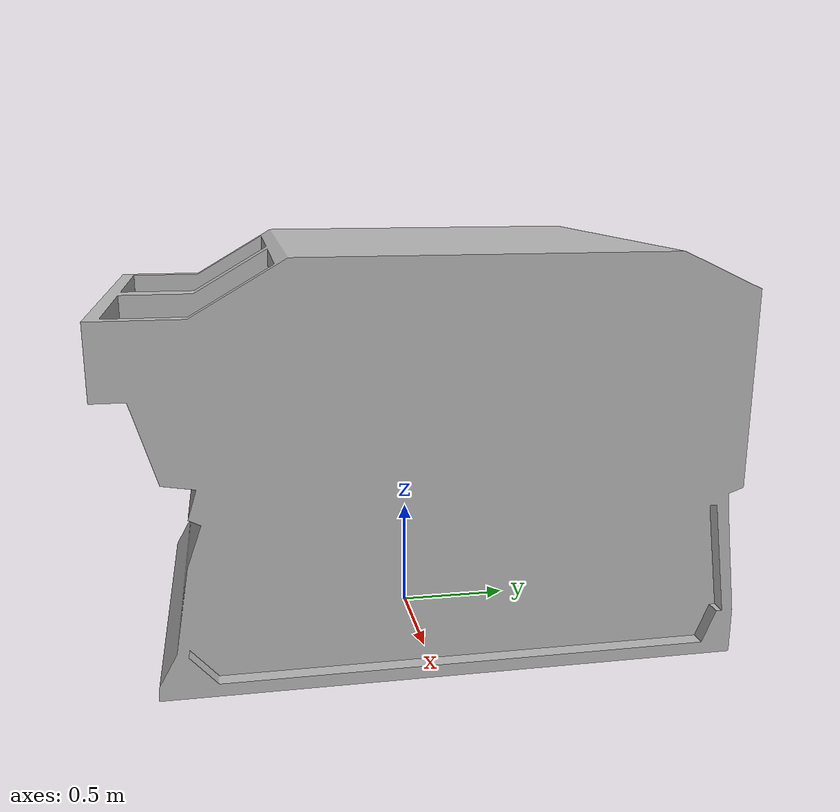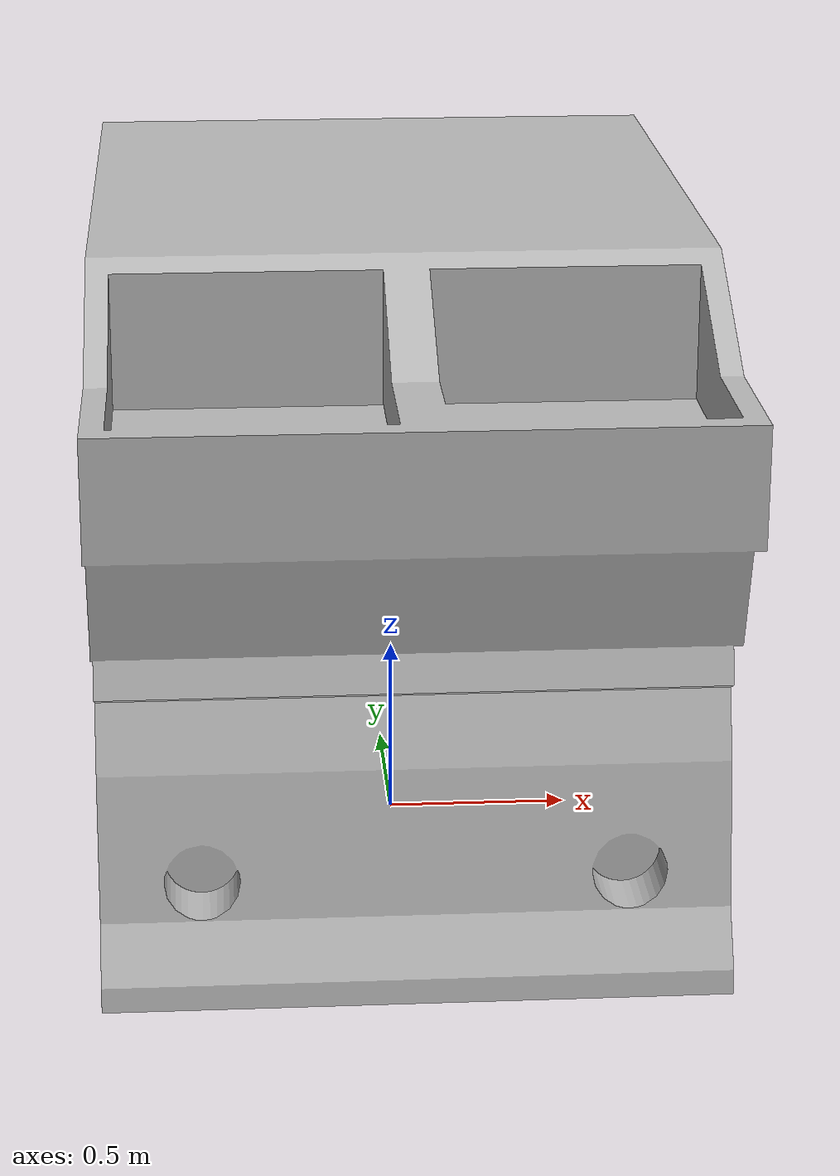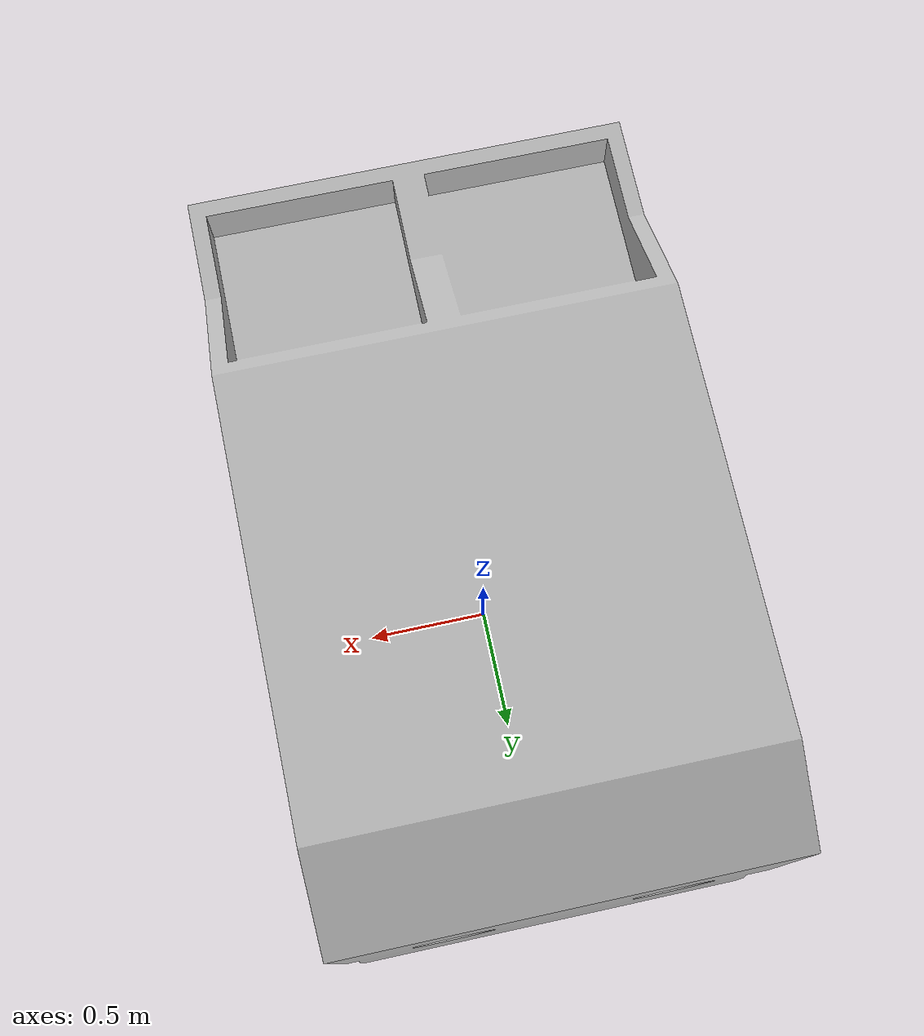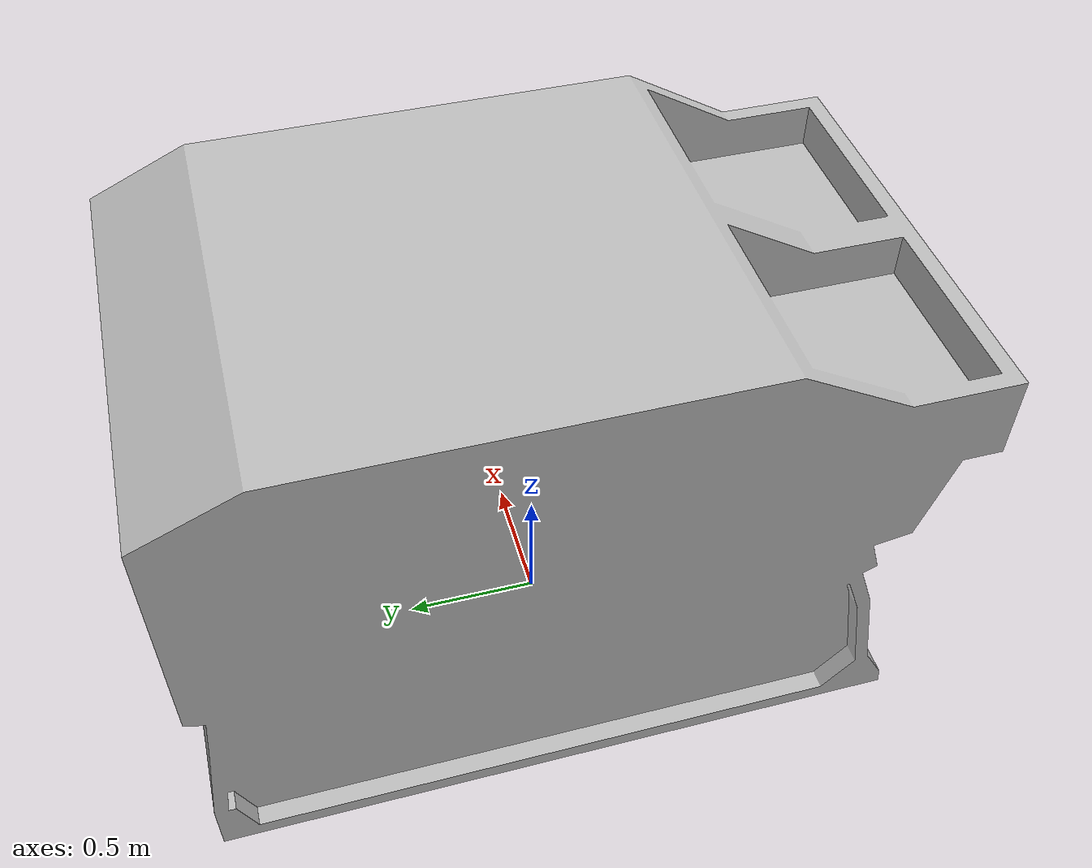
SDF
<?xml version='1.0'?>
<sdf version='1.6'>
  <model name='greatshark'>
    <link name='base_link'>
      <self_collide>0</self_collide>
      <pose frame=''>0 0 0 0 -0 0</pose>
      <inertial>
        <pose frame=''>0 0 0 0 -0 0</pose>
        <inertia>
          <ixx>1</ixx>
          <ixy>0</ixy>
          <ixz>0</ixz>
          <iyy>1</iyy>
          <iyz>0</iyz>
          <izz>1</izz>
        </inertia>
        <mass>1</mass>
      </inertial>
      <gravity>1</gravity>
      <visual name='visual'>
        <geometry>
          <mesh>
            <uri>model://Greatwhite/mesh/eNOVUS.dae</uri>
          </mesh>
        </geometry>
        <pose frame=''>0 0 0 0 -0 0</pose>
        <transparency>0</transparency>
        <cast_shadows>1</cast_shadows>
      </visual>
      <collision name='low_body'>
        <laser_retro>0</laser_retro>
        <max_contacts>10</max_contacts>
        <pose frame=''>0 0.1 0.5 0 -0 0</pose>
        <geometry>
          <box>
            <size>1.6 2.5 1</size>
          </box>
        </geometry>

      </collision>
      <collision name='upper_body'>
        <laser_retro>0</laser_retro>
        <max_contacts>10</max_contacts>
        <pose frame=''>0 0 1.4 0 -0 0</pose>
        <geometry>
          <box>
            <size>1.6 2.7 0.81</size>
          </box>
        </geometry>

      </collision>
    </link>
    <static>0</static>
    <allow_auto_disable>1</allow_auto_disable>
  </model>
</sdf>
